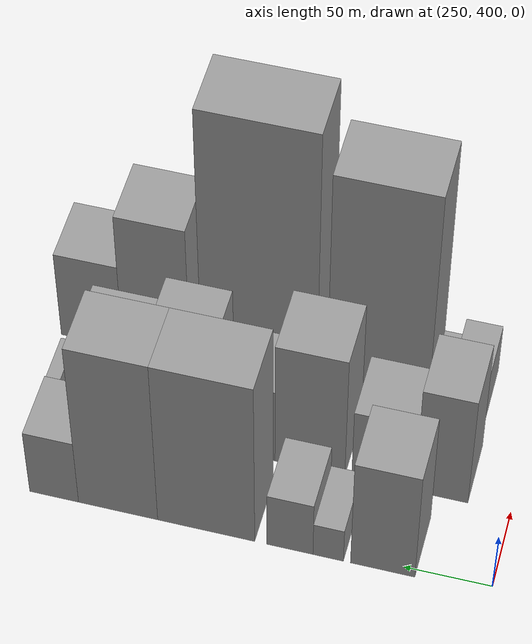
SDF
<sdf version="1.6">
 <world name="default">
  <model name="building_196">
   <static>1</static>
   <pose>265.0000 460.8091 0 0.000000 0.000000 0.000000</pose>
   <link name="link">
    <pose>0 0 48.00 0 0 0</pose>
    <collision name="collision"><geometry><box><size>40.0000 36.4441 96.0000</size></box></geometry></collision>
    <visual name="visual">
     <cast_shadows>0</cast_shadows>
     <geometry><box><size>40.0000 36.4441 96.0000</size></box></geometry>
     <material>
      <script>
       <uri>model://grey_wall/materials/scripts</uri>
       <uri>model://grey_wall/materials/textures</uri>
       <name>vrc/grey_wall</name>
      </script>
     </material>
    </visual>
   </link>
  </model>
  <model name="building_197">
   <static>1</static>
   <pose>265.0000 491.7063 0 0.000000 0.000000 0.000000</pose>
   <link name="link">
    <pose>0 0 15.00 0 0 0</pose>
    <collision name="collision"><geometry><box><size>40.0000 17.3502 30.0000</size></box></geometry></collision>
    <visual name="visual">
     <cast_shadows>0</cast_shadows>
     <geometry><box><size>40.0000 17.3502 30.0000</size></box></geometry>
     <material>
      <script>
       <uri>model://grey_wall/materials/scripts</uri>
       <uri>model://grey_wall/materials/textures</uri>
       <name>vrc/grey_wall</name>
      </script>
     </material>
    </visual>
   </link>
  </model>
  <model name="building_198">
   <static>1</static>
   <pose>265.0000 513.5378 0 0.000000 0.000000 0.000000</pose>
   <link name="link">
    <pose>0 0 24.00 0 0 0</pose>
    <collision name="collision"><geometry><box><size>40.0000 26.3129 48.0000</size></box></geometry></collision>
    <visual name="visual">
     <cast_shadows>0</cast_shadows>
     <geometry><box><size>40.0000 26.3129 48.0000</size></box></geometry>
     <material>
      <script>
       <uri>model://grey_wall/materials/scripts</uri>
       <uri>model://grey_wall/materials/textures</uri>
       <name>vrc/grey_wall</name>
      </script>
     </material>
    </visual>
   </link>
  </model>
  <model name="building_199">
   <static>1</static>
   <pose>265.0000 561.7441 0 0.000000 0.000000 0.000000</pose>
   <link name="link">
    <pose>0 0 72.00 0 0 0</pose>
    <collision name="collision"><geometry><box><size>40.0000 56.0996 144.0000</size></box></geometry></collision>
    <visual name="visual">
     <cast_shadows>0</cast_shadows>
     <geometry><box><size>40.0000 56.0996 144.0000</size></box></geometry>
     <material>
      <script>
       <uri>model://grey_wall/materials/scripts</uri>
       <uri>model://grey_wall/materials/textures</uri>
       <name>vrc/grey_wall</name>
      </script>
     </material>
    </visual>
   </link>
  </model>
  <model name="building_200">
   <static>1</static>
   <pose>265.0000 612.9077 0 0.000000 0.000000 0.000000</pose>
   <link name="link">
    <pose>0 0 72.00 0 0 0</pose>
    <collision name="collision"><geometry><box><size>40.0000 46.2276 144.0000</size></box></geometry></collision>
    <visual name="visual">
     <cast_shadows>0</cast_shadows>
     <geometry><box><size>40.0000 46.2276 144.0000</size></box></geometry>
     <material>
      <script>
       <uri>model://grey_wall/materials/scripts</uri>
       <uri>model://grey_wall/materials/textures</uri>
       <name>vrc/grey_wall</name>
      </script>
     </material>
    </visual>
   </link>
  </model>
  <model name="building_201">
   <static>1</static>
   <pose>265.0000 650.3772 0 0.000000 0.000000 0.000000</pose>
   <link name="link">
    <pose>0 0 28.50 0 0 0</pose>
    <collision name="collision"><geometry><box><size>40.0000 28.7114 57.0000</size></box></geometry></collision>
    <visual name="visual">
     <cast_shadows>0</cast_shadows>
     <geometry><box><size>40.0000 28.7114 57.0000</size></box></geometry>
     <material>
      <script>
       <uri>model://grey_wall/materials/scripts</uri>
       <uri>model://grey_wall/materials/textures</uri>
       <name>vrc/grey_wall</name>
      </script>
     </material>
    </visual>
   </link>
  </model>
  <model name="building_249">
   <static>1</static>
   <pose>320.0000 439.7860 0 0.000000 0.000000 0.000000</pose>
   <link name="link">
    <pose>0 0 48.00 0 0 0</pose>
    <collision name="collision"><geometry><box><size>40.0000 30.3244 96.0000</size></box></geometry></collision>
    <visual name="visual">
     <cast_shadows>0</cast_shadows>
     <geometry><box><size>40.0000 30.3244 96.0000</size></box></geometry>
     <material>
      <script>
       <uri>model://grey_wall/materials/scripts</uri>
       <uri>model://grey_wall/materials/textures</uri>
       <name>vrc/grey_wall</name>
      </script>
     </material>
    </visual>
   </link>
  </model>
  <model name="building_250">
   <static>1</static>
   <pose>320.0000 473.3218 0 0.000000 0.000000 0.000000</pose>
   <link name="link">
    <pose>0 0 31.50 0 0 0</pose>
    <collision name="collision"><geometry><box><size>40.0000 36.7473 63.0000</size></box></geometry></collision>
    <visual name="visual">
     <cast_shadows>0</cast_shadows>
     <geometry><box><size>40.0000 36.7473 63.0000</size></box></geometry>
     <material>
      <script>
       <uri>model://grey_wall/materials/scripts</uri>
       <uri>model://grey_wall/materials/textures</uri>
       <name>vrc/grey_wall</name>
      </script>
     </material>
    </visual>
   </link>
  </model>
  <model name="building_251">
   <static>1</static>
   <pose>320.0000 516.1049 0 0.000000 0.000000 0.000000</pose>
   <link name="link">
    <pose>0 0 54.00 0 0 0</pose>
    <collision name="collision"><geometry><box><size>40.0000 40.8188 108.0000</size></box></geometry></collision>
    <visual name="visual">
     <cast_shadows>0</cast_shadows>
     <geometry><box><size>40.0000 40.8188 108.0000</size></box></geometry>
     <material>
      <script>
       <uri>model://grey_wall/materials/scripts</uri>
       <uri>model://grey_wall/materials/textures</uri>
       <name>vrc/grey_wall</name>
      </script>
     </material>
    </visual>
   </link>
  </model>
  <model name="building_252">
   <static>1</static>
   <pose>320.0000 553.8404 0 0.000000 0.000000 0.000000</pose>
   <link name="link">
    <pose>0 0 33.00 0 0 0</pose>
    <collision name="collision"><geometry><box><size>40.0000 34.6521 66.0000</size></box></geometry></collision>
    <visual name="visual">
     <cast_shadows>0</cast_shadows>
     <geometry><box><size>40.0000 34.6521 66.0000</size></box></geometry>
     <material>
      <script>
       <uri>model://grey_wall/materials/scripts</uri>
       <uri>model://grey_wall/materials/textures</uri>
       <name>vrc/grey_wall</name>
      </script>
     </material>
    </visual>
   </link>
  </model>
  <model name="building_253">
   <static>1</static>
   <pose>320.0000 590.1971 0 0.000000 0.000000 0.000000</pose>
   <link name="link">
    <pose>0 0 48.00 0 0 0</pose>
    <collision name="collision"><geometry><box><size>40.0000 38.0614 96.0000</size></box></geometry></collision>
    <visual name="visual">
     <cast_shadows>0</cast_shadows>
     <geometry><box><size>40.0000 38.0614 96.0000</size></box></geometry>
     <material>
      <script>
       <uri>model://grey_wall/materials/scripts</uri>
       <uri>model://grey_wall/materials/textures</uri>
       <name>vrc/grey_wall</name>
      </script>
     </material>
    </visual>
   </link>
  </model>
  <model name="building_254">
   <static>1</static>
   <pose>320.0000 632.9787 0 0.000000 0.000000 0.000000</pose>
   <link name="link">
    <pose>0 0 37.50 0 0 0</pose>
    <collision name="collision"><geometry><box><size>40.0000 39.5017 75.0000</size></box></geometry></collision>
    <visual name="visual">
     <cast_shadows>0</cast_shadows>
     <geometry><box><size>40.0000 39.5017 75.0000</size></box></geometry>
     <material>
      <script>
       <uri>model://grey_wall/materials/scripts</uri>
       <uri>model://grey_wall/materials/textures</uri>
       <name>vrc/grey_wall</name>
      </script>
     </material>
    </visual>
   </link>
  </model>
  <model name="building_255">
   <static>1</static>
   <pose>320.0000 659.6290 0 0.000000 0.000000 0.000000</pose>
   <link name="link">
    <pose>0 0 9.00 0 0 0</pose>
    <collision name="collision"><geometry><box><size>40.0000 7.7990 18.0000</size></box></geometry></collision>
    <visual name="visual">
     <cast_shadows>0</cast_shadows>
     <geometry><box><size>40.0000 7.7990 18.0000</size></box></geometry>
     <material>
      <script>
       <uri>model://grey_wall/materials/scripts</uri>
       <uri>model://grey_wall/materials/textures</uri>
       <name>vrc/grey_wall</name>
      </script>
     </material>
    </visual>
   </link>
  </model>
  <model name="building_256">
   <static>1</static>
   <pose>320.0000 670.8638 0 0.000000 0.000000 0.000000</pose>
   <link name="link">
    <pose>0 0 9.00 0 0 0</pose>
    <collision name="collision"><geometry><box><size>40.0000 8.6707 18.0000</size></box></geometry></collision>
    <visual name="visual">
     <cast_shadows>0</cast_shadows>
     <geometry><box><size>40.0000 8.6707 18.0000</size></box></geometry>
     <material>
      <script>
       <uri>model://grey_wall/materials/scripts</uri>
       <uri>model://grey_wall/materials/textures</uri>
       <name>vrc/grey_wall</name>
      </script>
     </material>
    </visual>
   </link>
  </model>
  <model name="building_303">
   <static>1</static>
   <pose>375.0000 437.5085 0 0.000000 0.000000 0.000000</pose>
   <link name="link">
    <pose>0 0 21.00 0 0 0</pose>
    <collision name="collision"><geometry><box><size>40.0000 21.3794 42.0000</size></box></geometry></collision>
    <visual name="visual">
     <cast_shadows>0</cast_shadows>
     <geometry><box><size>40.0000 21.3794 42.0000</size></box></geometry>
     <material>
      <script>
       <uri>model://grey_wall/materials/scripts</uri>
       <uri>model://grey_wall/materials/textures</uri>
       <name>vrc/grey_wall</name>
      </script>
     </material>
    </visual>
   </link>
  </model>
  <model name="building_304">
   <static>1</static>
   <pose>375.0000 454.1311 0 0.000000 0.000000 0.000000</pose>
   <link name="link">
    <pose>0 0 13.50 0 0 0</pose>
    <collision name="collision"><geometry><box><size>40.0000 11.8658 27.0000</size></box></geometry></collision>
    <visual name="visual">
     <cast_shadows>0</cast_shadows>
     <geometry><box><size>40.0000 11.8658 27.0000</size></box></geometry>
     <material>
      <script>
       <uri>model://grey_wall/materials/scripts</uri>
       <uri>model://grey_wall/materials/textures</uri>
       <name>vrc/grey_wall</name>
      </script>
     </material>
    </visual>
   </link>
  </model>
  <model name="building_305">
   <static>1</static>
   <pose>375.0000 489.9759 0 0.000000 0.000000 0.000000</pose>
   <link name="link">
    <pose>0 0 96.00 0 0 0</pose>
    <collision name="collision"><geometry><box><size>40.0000 59.8240 192.0000</size></box></geometry></collision>
    <visual name="visual">
     <cast_shadows>0</cast_shadows>
     <geometry><box><size>40.0000 59.8240 192.0000</size></box></geometry>
     <material>
      <script>
       <uri>model://grey_wall/materials/scripts</uri>
       <uri>model://grey_wall/materials/textures</uri>
       <name>vrc/grey_wall</name>
      </script>
     </material>
    </visual>
   </link>
  </model>
  <model name="building_306">
   <static>1</static>
   <pose>375.0000 560.5203 0 0.000000 0.000000 0.000000</pose>
   <link name="link">
    <pose>0 0 111.00 0 0 0</pose>
    <collision name="collision"><geometry><box><size>40.0000 69.2647 222.0000</size></box></geometry></collision>
    <visual name="visual">
     <cast_shadows>0</cast_shadows>
     <geometry><box><size>40.0000 69.2647 222.0000</size></box></geometry>
     <material>
      <script>
       <uri>model://grey_wall/materials/scripts</uri>
       <uri>model://grey_wall/materials/textures</uri>
       <name>vrc/grey_wall</name>
      </script>
     </material>
    </visual>
   </link>
  </model>
  <model name="building_307">
   <static>1</static>
   <pose>375.0000 622.7232 0 0.000000 0.000000 0.000000</pose>
   <link name="link">
    <pose>0 0 60.00 0 0 0</pose>
    <collision name="collision"><geometry><box><size>40.0000 41.1410 120.0000</size></box></geometry></collision>
    <visual name="visual">
     <cast_shadows>0</cast_shadows>
     <geometry><box><size>40.0000 41.1410 120.0000</size></box></geometry>
     <material>
      <script>
       <uri>model://grey_wall/materials/scripts</uri>
       <uri>model://grey_wall/materials/textures</uri>
       <name>vrc/grey_wall</name>
      </script>
     </material>
    </visual>
   </link>
  </model>
  <model name="building_308">
   <static>1</static>
   <pose>375.0000 662.0808 0 0.000000 0.000000 0.000000</pose>
   <link name="link">
    <pose>0 0 37.50 0 0 0</pose>
    <collision name="collision"><geometry><box><size>40.0000 37.5743 75.0000</size></box></geometry></collision>
    <visual name="visual">
     <cast_shadows>0</cast_shadows>
     <geometry><box><size>40.0000 37.5743 75.0000</size></box></geometry>
     <material>
      <script>
       <uri>model://grey_wall/materials/scripts</uri>
       <uri>model://grey_wall/materials/textures</uri>
       <name>vrc/grey_wall</name>
      </script>
     </material>
    </visual>
   </link>
  </model>
 </world>
</sdf>
